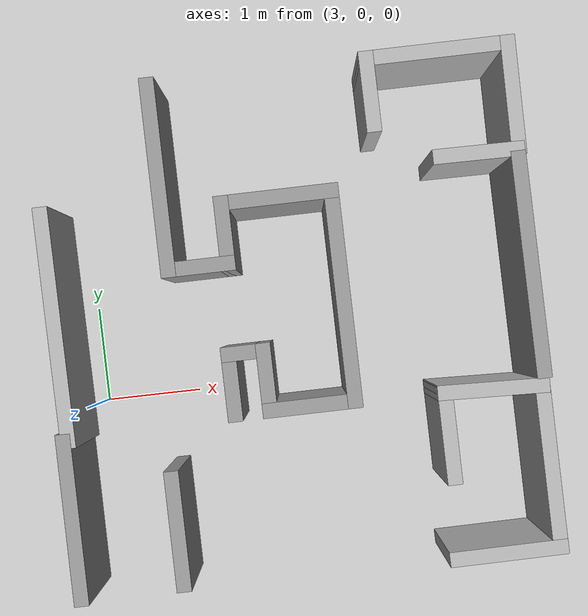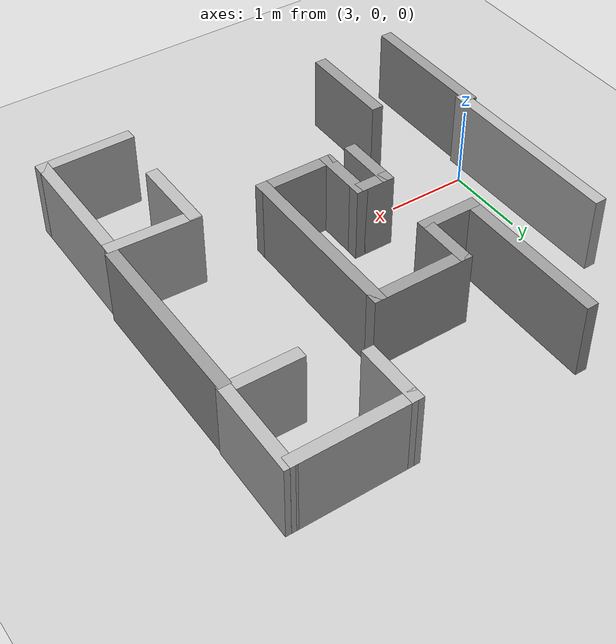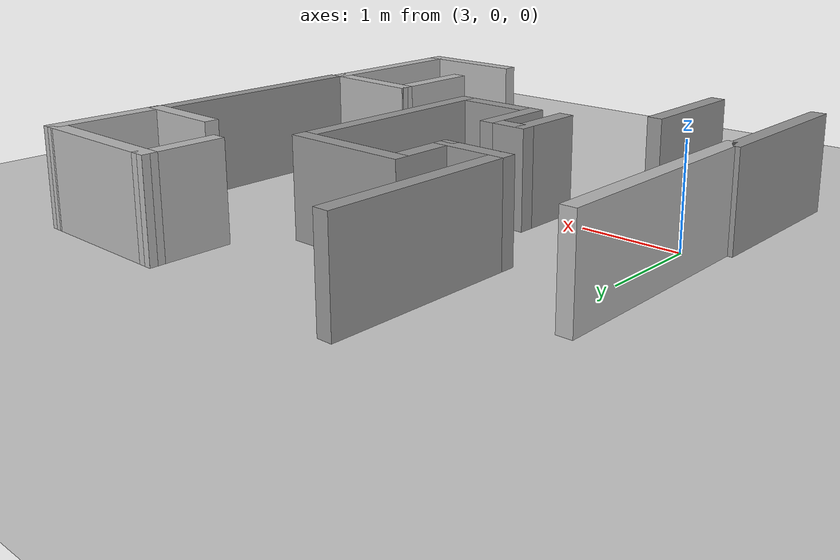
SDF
<sdf version="1.7">
 <world name="default">
  <model name="ground_plane">
   <static>1</static>
   <link name="link">
    <collision name="collision">
     <geometry><plane><normal>0 0 1</normal><size>100 100</size></plane></geometry>
     <surface><friction><ode><mu>100</mu><mu2>50</mu2></ode></friction></surface>
    </collision>
    <visual name="visual">
     <cast_shadows>0</cast_shadows>
     <geometry><plane><normal>0 0 1</normal><size>100 100</size></plane></geometry>
     <material>
      <script><uri>file://media/materials/scripts/gazebo.material</uri><name>Gazebo/Grey</name></script>
     </material>
    </visual>
   </link>
  </model>
  <model name="final_maze_v2">
   <link name="Wall_29">
    <pose>0.877343 -1.70359 0 0 0 -1.5708</pose>
    <inertial>
     <inertia><ixx>0</ixx><ixy>0</ixy><ixz>0</ixz><iyy>0</iyy><iyz>0</iyz><izz>0</izz></inertia>
     <mass>0</mass>
    </inertial>
    <visual name="Wall_29_Visual">
     <pose>0 0 0.5 0 -0 0</pose>
     <geometry><box><size>1.71998 0.15 1</size></box></geometry>
     <material>
      <script><uri>file://media/materials/scripts/gazebo.material</uri><name>Gazebo/Grey</name></script>
      <ambient>1 1 1 1</ambient>
      <shader type="pixel"/>
     </material>
     <meta><layer>0</layer></meta>
    </visual>
    <collision name="Wall_29_Collision">
     <pose>0 0 0.5 0 -0 0</pose>
     <geometry><box><size>1.71998 0.15 1</size></box></geometry>
     <surface>
      <friction>
       <ode><mu>1</mu><mu2>1</mu2><fdir1>0 0 0</fdir1><slip1>0</slip1><slip2>0</slip2></ode>
       <torsional>
        <coefficient>1</coefficient>
        <patch_radius>0</patch_radius>
        <surface_radius>0</surface_radius>
        <use_patch_radius>1</use_patch_radius>
        <ode><slip>0</slip></ode>
       </torsional>
      </friction>
      <bounce><restitution_coefficient>0</restitution_coefficient><threshold>1e+06</threshold></bounce>
      <contact>
       <collide_without_contact>0</collide_without_contact>
       <collide_without_contact_bitmask>1</collide_without_contact_bitmask>
       <collide_bitmask>1</collide_bitmask>
       <ode>
        <soft_cfm>0</soft_cfm>
        <soft_erp>0.2</soft_erp>
        <kp>1e+13</kp>
        <kd>1</kd>
        <max_vel>0.01</max_vel>
        <min_depth>0</min_depth>
       </ode>
       <bullet>
        <split_impulse>1</split_impulse>
        <split_impulse_penetration_threshold>-0.01</split_impulse_penetration_threshold>
        <soft_cfm>0</soft_cfm>
        <soft_erp>0.2</soft_erp>
        <kp>1e+13</kp>
        <kd>1</kd>
       </bullet>
      </contact>
     </surface>
    </collision>
   </link>
   <link name="Wall_29_clone">
    <pose>1.90614 -1.93473 0 0 0 -1.5708</pose>
    <inertial>
     <inertia><ixx>0</ixx><ixy>0</ixy><ixz>0</ixz><iyy>0</iyy><iyz>0</iyz><izz>0</izz></inertia>
     <mass>0</mass>
    </inertial>
    <visual name="Wall_29_Visual">
     <pose>0 0 0.5 0 -0 0</pose>
     <geometry><box><size>1.20691 0.15 1</size></box></geometry>
     <material>
      <script><uri>file://media/materials/scripts/gazebo.material</uri><name>Gazebo/Grey</name></script>
      <ambient>1 1 1 1</ambient>
      <shader type="pixel"/>
     </material>
     <meta><layer>0</layer></meta>
    </visual>
    <collision name="Wall_29_Collision">
     <pose>0 0 0.5 0 -0 0</pose>
     <geometry><box><size>1.20691 0.15 1</size></box></geometry>
     <surface>
      <friction>
       <ode><mu>1</mu><mu2>1</mu2><fdir1>0 0 0</fdir1><slip1>0</slip1><slip2>0</slip2></ode>
       <torsional>
        <coefficient>1</coefficient>
        <patch_radius>0</patch_radius>
        <surface_radius>0</surface_radius>
        <use_patch_radius>1</use_patch_radius>
        <ode><slip>0</slip></ode>
       </torsional>
      </friction>
      <bounce><restitution_coefficient>0</restitution_coefficient><threshold>1e+06</threshold></bounce>
      <contact>
       <collide_without_contact>0</collide_without_contact>
       <collide_without_contact_bitmask>1</collide_without_contact_bitmask>
       <collide_bitmask>1</collide_bitmask>
       <ode>
        <soft_cfm>0</soft_cfm>
        <soft_erp>0.2</soft_erp>
        <kp>1e+13</kp>
        <kd>1</kd>
        <max_vel>0.01</max_vel>
        <min_depth>0</min_depth>
       </ode>
       <bullet>
        <split_impulse>1</split_impulse>
        <split_impulse_penetration_threshold>-0.01</split_impulse_penetration_threshold>
        <soft_cfm>0</soft_cfm>
        <soft_erp>0.2</soft_erp>
        <kp>1e+13</kp>
        <kd>1</kd>
       </bullet>
      </contact>
     </surface>
    </collision>
   </link>
   <link name="Wall_39">
    <pose>2.10527 1.58161 0 0 0 -1.5708</pose>
    <visual name="Wall_39_Visual_0">
     <pose>0 0 0.5 0 -0 0</pose>
     <geometry><box><size>2 0.15 1</size></box></geometry>
     <material>
      <script><uri>file://media/materials/scripts/gazebo.material</uri><name>Gazebo/Grey</name></script>
      <ambient>1 1 1 1</ambient>
      <shader type="pixel"/>
     </material>
     <meta><layer>0</layer></meta>
    </visual>
    <collision name="Wall_39_Collision_0">
     <pose>0 0 0.5 0 -0 0</pose>
     <geometry><box><size>2 0.15 1</size></box></geometry>
     <surface>
      <friction>
       <ode><mu>1</mu><mu2>1</mu2><fdir1>0 0 0</fdir1><slip1>0</slip1><slip2>0</slip2></ode>
       <torsional>
        <coefficient>1</coefficient>
        <patch_radius>0</patch_radius>
        <surface_radius>0</surface_radius>
        <use_patch_radius>1</use_patch_radius>
        <ode><slip>0</slip></ode>
       </torsional>
      </friction>
      <bounce><restitution_coefficient>0</restitution_coefficient><threshold>1e+06</threshold></bounce>
      <contact>
       <collide_without_contact>0</collide_without_contact>
       <collide_without_contact_bitmask>1</collide_without_contact_bitmask>
       <collide_bitmask>1</collide_bitmask>
       <ode>
        <soft_cfm>0</soft_cfm>
        <soft_erp>0.2</soft_erp>
        <kp>1e+13</kp>
        <kd>1</kd>
        <max_vel>0.01</max_vel>
        <min_depth>0</min_depth>
       </ode>
       <bullet>
        <split_impulse>1</split_impulse>
        <split_impulse_penetration_threshold>-0.01</split_impulse_penetration_threshold>
        <soft_cfm>0</soft_cfm>
        <soft_erp>0.2</soft_erp>
        <kp>1e+13</kp>
        <kd>1</kd>
       </bullet>
      </contact>
     </surface>
    </collision>
   </link>
   <link name="Wall_40">
    <pose>2.40526 0.656606 0 0 -0 0</pose>
    <inertial>
     <mass>1</mass>
     <inertia><ixx>1</ixx><ixy>0</ixy><ixz>0</ixz><iyy>1</iyy><iyz>0</iyz><izz>1</izz></inertia>
    </inertial>
    <visual name="Wall_40_Visual">
     <pose>0 0 0.5 0 -0 0</pose>
     <geometry><box><size>0.75 0.15 1</size></box></geometry>
     <material>
      <script><uri>file://media/materials/scripts/gazebo.material</uri><name>Gazebo/Grey</name></script>
      <ambient>1 1 1 1</ambient>
      <shader type="pixel"><normal_map>__default__</normal_map></shader>
      <diffuse>0.7 0.7 0.7 1</diffuse>
      <specular>0.01 0.01 0.01 1</specular>
      <emissive>0 0 0 1</emissive>
     </material>
     <meta><layer>0</layer></meta>
    </visual>
    <collision name="Wall_40_Collision">
     <pose>0 0 0.5 0 -0 0</pose>
     <geometry><box><size>0.75 0.15 1</size></box></geometry>
     <surface>
      <friction>
       <ode><mu>1</mu><mu2>1</mu2><fdir1>0 0 0</fdir1><slip1>0</slip1><slip2>0</slip2></ode>
       <torsional>
        <coefficient>1</coefficient>
        <patch_radius>0</patch_radius>
        <surface_radius>0</surface_radius>
        <use_patch_radius>1</use_patch_radius>
        <ode><slip>0</slip></ode>
       </torsional>
      </friction>
      <bounce><restitution_coefficient>0</restitution_coefficient><threshold>1e+06</threshold></bounce>
      <contact>
       <collide_without_contact>0</collide_without_contact>
       <collide_without_contact_bitmask>1</collide_without_contact_bitmask>
       <collide_bitmask>1</collide_bitmask>
       <ode>
        <soft_cfm>0</soft_cfm>
        <soft_erp>0.2</soft_erp>
        <kp>1e+13</kp>
        <kd>1</kd>
        <max_vel>0.01</max_vel>
        <min_depth>0</min_depth>
       </ode>
       <bullet>
        <split_impulse>1</split_impulse>
        <split_impulse_penetration_threshold>-0.01</split_impulse_penetration_threshold>
        <soft_cfm>0</soft_cfm>
        <soft_erp>0.2</soft_erp>
        <kp>1e+13</kp>
        <kd>1</kd>
       </bullet>
      </contact>
     </surface>
    </collision>
   </link>
   <link name="Wall_41">
    <pose>2.70526 0.956606 0 0 -0 1.5708</pose>
    <inertial>
     <mass>1</mass>
     <inertia><ixx>1</ixx><ixy>0</ixy><ixz>0</ixz><iyy>1</iyy><iyz>0</iyz><izz>1</izz></inertia>
    </inertial>
    <visual name="Wall_41_Visual">
     <pose>0 0 0.5 0 -0 0</pose>
     <geometry><box><size>0.75 0.15 1</size></box></geometry>
     <material>
      <script><uri>file://media/materials/scripts/gazebo.material</uri><name>Gazebo/Grey</name></script>
      <ambient>1 1 1 1</ambient>
      <shader type="pixel"><normal_map>__default__</normal_map></shader>
      <diffuse>0.7 0.7 0.7 1</diffuse>
      <specular>0.01 0.01 0.01 1</specular>
      <emissive>0 0 0 1</emissive>
     </material>
     <meta><layer>0</layer></meta>
    </visual>
    <collision name="Wall_41_Collision">
     <pose>0 0 0.5 0 -0 0</pose>
     <geometry><box><size>0.75 0.15 1</size></box></geometry>
     <surface>
      <friction>
       <ode><mu>1</mu><mu2>1</mu2><fdir1>0 0 0</fdir1><slip1>0</slip1><slip2>0</slip2></ode>
       <torsional>
        <coefficient>1</coefficient>
        <patch_radius>0</patch_radius>
        <surface_radius>0</surface_radius>
        <use_patch_radius>1</use_patch_radius>
        <ode><slip>0</slip></ode>
       </torsional>
      </friction>
      <bounce><restitution_coefficient>0</restitution_coefficient><threshold>1e+06</threshold></bounce>
      <contact>
       <collide_without_contact>0</collide_without_contact>
       <collide_without_contact_bitmask>1</collide_without_contact_bitmask>
       <collide_bitmask>1</collide_bitmask>
       <ode>
        <soft_cfm>0</soft_cfm>
        <soft_erp>0.2</soft_erp>
        <kp>1e+13</kp>
        <kd>1</kd>
        <max_vel>0.01</max_vel>
        <min_depth>0</min_depth>
       </ode>
       <bullet>
        <split_impulse>1</split_impulse>
        <split_impulse_penetration_threshold>-0.01</split_impulse_penetration_threshold>
        <soft_cfm>0</soft_cfm>
        <soft_erp>0.2</soft_erp>
        <kp>1e+13</kp>
        <kd>1</kd>
       </bullet>
      </contact>
     </surface>
    </collision>
   </link>
   <link name="Wall_42">
    <pose>3.25527 1.25661 0 0 -0 0</pose>
    <inertial>
     <mass>1</mass>
     <inertia><ixx>1</ixx><ixy>0</ixy><ixz>0</ixz><iyy>1</iyy><iyz>0</iyz><izz>1</izz></inertia>
    </inertial>
    <visual name="Wall_42_Visual">
     <pose>0 0 0.5 0 -0 0</pose>
     <geometry><box><size>1.25 0.15 1</size></box></geometry>
     <material>
      <script><uri>file://media/materials/scripts/gazebo.material</uri><name>Gazebo/Grey</name></script>
      <ambient>1 1 1 1</ambient>
      <shader type="pixel"><normal_map>__default__</normal_map></shader>
      <diffuse>0.7 0.7 0.7 1</diffuse>
      <specular>0.01 0.01 0.01 1</specular>
      <emissive>0 0 0 1</emissive>
     </material>
     <meta><layer>0</layer></meta>
    </visual>
    <collision name="Wall_42_Collision">
     <pose>0 0 0.5 0 -0 0</pose>
     <geometry><box><size>1.25 0.15 1</size></box></geometry>
     <surface>
      <friction>
       <ode><mu>1</mu><mu2>1</mu2><fdir1>0 0 0</fdir1><slip1>0</slip1><slip2>0</slip2></ode>
       <torsional>
        <coefficient>1</coefficient>
        <patch_radius>0</patch_radius>
        <surface_radius>0</surface_radius>
        <use_patch_radius>1</use_patch_radius>
        <ode><slip>0</slip></ode>
       </torsional>
      </friction>
      <bounce><restitution_coefficient>0</restitution_coefficient><threshold>1e+06</threshold></bounce>
      <contact>
       <collide_without_contact>0</collide_without_contact>
       <collide_without_contact_bitmask>1</collide_without_contact_bitmask>
       <collide_bitmask>1</collide_bitmask>
       <ode>
        <soft_cfm>0</soft_cfm>
        <soft_erp>0.2</soft_erp>
        <kp>1e+13</kp>
        <kd>1</kd>
        <max_vel>0.01</max_vel>
        <min_depth>0</min_depth>
       </ode>
       <bullet>
        <split_impulse>1</split_impulse>
        <split_impulse_penetration_threshold>-0.01</split_impulse_penetration_threshold>
        <soft_cfm>0</soft_cfm>
        <soft_erp>0.2</soft_erp>
        <kp>1e+13</kp>
        <kd>1</kd>
       </bullet>
      </contact>
     </surface>
    </collision>
   </link>
   <link name="Wall_43">
    <pose>3.80526 0.206606 0 0 0 -1.5708</pose>
    <inertial>
     <mass>1</mass>
     <inertia><ixx>1</ixx><ixy>0</ixy><ixz>0</ixz><iyy>1</iyy><iyz>0</iyz><izz>1</izz></inertia>
    </inertial>
    <visual name="Wall_43_Visual">
     <pose>0 0 0.5 0 -0 0</pose>
     <geometry><box><size>2.25 0.15 1</size></box></geometry>
     <material>
      <script><uri>file://media/materials/scripts/gazebo.material</uri><name>Gazebo/Grey</name></script>
      <ambient>1 1 1 1</ambient>
      <shader type="pixel"><normal_map>__default__</normal_map></shader>
      <diffuse>0.7 0.7 0.7 1</diffuse>
      <specular>0.01 0.01 0.01 1</specular>
      <emissive>0 0 0 1</emissive>
     </material>
     <meta><layer>0</layer></meta>
    </visual>
    <collision name="Wall_43_Collision">
     <pose>0 0 0.5 0 -0 0</pose>
     <geometry><box><size>2.25 0.15 1</size></box></geometry>
     <surface>
      <friction>
       <ode><mu>1</mu><mu2>1</mu2><fdir1>0 0 0</fdir1><slip1>0</slip1><slip2>0</slip2></ode>
       <torsional>
        <coefficient>1</coefficient>
        <patch_radius>0</patch_radius>
        <surface_radius>0</surface_radius>
        <use_patch_radius>1</use_patch_radius>
        <ode><slip>0</slip></ode>
       </torsional>
      </friction>
      <bounce><restitution_coefficient>0</restitution_coefficient><threshold>1e+06</threshold></bounce>
      <contact>
       <collide_without_contact>0</collide_without_contact>
       <collide_without_contact_bitmask>1</collide_without_contact_bitmask>
       <collide_bitmask>1</collide_bitmask>
       <ode>
        <soft_cfm>0</soft_cfm>
        <soft_erp>0.2</soft_erp>
        <kp>1e+13</kp>
        <kd>1</kd>
        <max_vel>0.01</max_vel>
        <min_depth>0</min_depth>
       </ode>
       <bullet>
        <split_impulse>1</split_impulse>
        <split_impulse_penetration_threshold>-0.01</split_impulse_penetration_threshold>
        <soft_cfm>0</soft_cfm>
        <soft_erp>0.2</soft_erp>
        <kp>1e+13</kp>
        <kd>1</kd>
       </bullet>
      </contact>
     </surface>
    </collision>
   </link>
   <link name="Wall_44">
    <pose>3.38027 -0.843394 0 0 -0 3.14159</pose>
    <inertial>
     <mass>1</mass>
     <inertia><ixx>1</ixx><ixy>0</ixy><ixz>0</ixz><iyy>1</iyy><iyz>0</iyz><izz>1</izz></inertia>
    </inertial>
    <visual name="Wall_44_Visual">
     <pose>0 0 0.5 0 -0 0</pose>
     <geometry><box><size>1 0.15 1</size></box></geometry>
     <material>
      <script><uri>file://media/materials/scripts/gazebo.material</uri><name>Gazebo/Grey</name></script>
      <ambient>1 1 1 1</ambient>
      <shader type="pixel"><normal_map>__default__</normal_map></shader>
      <diffuse>0.7 0.7 0.7 1</diffuse>
      <specular>0.01 0.01 0.01 1</specular>
      <emissive>0 0 0 1</emissive>
     </material>
     <meta><layer>0</layer></meta>
    </visual>
    <collision name="Wall_44_Collision">
     <pose>0 0 0.5 0 -0 0</pose>
     <geometry><box><size>1 0.15 1</size></box></geometry>
     <surface>
      <friction>
       <ode><mu>1</mu><mu2>1</mu2><fdir1>0 0 0</fdir1><slip1>0</slip1><slip2>0</slip2></ode>
       <torsional>
        <coefficient>1</coefficient>
        <patch_radius>0</patch_radius>
        <surface_radius>0</surface_radius>
        <use_patch_radius>1</use_patch_radius>
        <ode><slip>0</slip></ode>
       </torsional>
      </friction>
      <bounce><restitution_coefficient>0</restitution_coefficient><threshold>1e+06</threshold></bounce>
      <contact>
       <collide_without_contact>0</collide_without_contact>
       <collide_without_contact_bitmask>1</collide_without_contact_bitmask>
       <collide_bitmask>1</collide_bitmask>
       <ode>
        <soft_cfm>0</soft_cfm>
        <soft_erp>0.2</soft_erp>
        <kp>1e+13</kp>
        <kd>1</kd>
        <max_vel>0.01</max_vel>
        <min_depth>0</min_depth>
       </ode>
       <bullet>
        <split_impulse>1</split_impulse>
        <split_impulse_penetration_threshold>-0.01</split_impulse_penetration_threshold>
        <soft_cfm>0</soft_cfm>
        <soft_erp>0.2</soft_erp>
        <kp>1e+13</kp>
        <kd>1</kd>
       </bullet>
      </contact>
     </surface>
    </collision>
   </link>
   <link name="Wall_45">
    <pose>2.95526 -0.543394 0 0 -0 1.5708</pose>
    <inertial>
     <mass>1</mass>
     <inertia><ixx>1</ixx><ixy>0</ixy><ixz>0</ixz><iyy>1</iyy><iyz>0</iyz><izz>1</izz></inertia>
    </inertial>
    <visual name="Wall_45_Visual">
     <pose>0 0 0.5 0 -0 0</pose>
     <geometry><box><size>0.75 0.15 1</size></box></geometry>
     <material>
      <script><uri>file://media/materials/scripts/gazebo.material</uri><name>Gazebo/Grey</name></script>
      <ambient>1 1 1 1</ambient>
      <shader type="pixel"><normal_map>__default__</normal_map></shader>
      <diffuse>0.7 0.7 0.7 1</diffuse>
      <specular>0.01 0.01 0.01 1</specular>
      <emissive>0 0 0 1</emissive>
     </material>
     <meta><layer>0</layer></meta>
    </visual>
    <collision name="Wall_45_Collision">
     <pose>0 0 0.5 0 -0 0</pose>
     <geometry><box><size>0.75 0.15 1</size></box></geometry>
     <surface>
      <friction>
       <ode><mu>1</mu><mu2>1</mu2><fdir1>0 0 0</fdir1><slip1>0</slip1><slip2>0</slip2></ode>
       <torsional>
        <coefficient>1</coefficient>
        <patch_radius>0</patch_radius>
        <surface_radius>0</surface_radius>
        <use_patch_radius>1</use_patch_radius>
        <ode><slip>0</slip></ode>
       </torsional>
      </friction>
      <bounce><restitution_coefficient>0</restitution_coefficient><threshold>1e+06</threshold></bounce>
      <contact>
       <collide_without_contact>0</collide_without_contact>
       <collide_without_contact_bitmask>1</collide_without_contact_bitmask>
       <collide_bitmask>1</collide_bitmask>
       <ode>
        <soft_cfm>0</soft_cfm>
        <soft_erp>0.2</soft_erp>
        <kp>1e+13</kp>
        <kd>1</kd>
        <max_vel>0.01</max_vel>
        <min_depth>0</min_depth>
       </ode>
       <bullet>
        <split_impulse>1</split_impulse>
        <split_impulse_penetration_threshold>-0.01</split_impulse_penetration_threshold>
        <soft_cfm>0</soft_cfm>
        <soft_erp>0.2</soft_erp>
        <kp>1e+13</kp>
        <kd>1</kd>
       </bullet>
      </contact>
     </surface>
    </collision>
   </link>
   <link name="Wall_46">
    <pose>2.78026 -0.243394 0 0 -0 3.14159</pose>
    <inertial>
     <mass>1</mass>
     <inertia><ixx>1</ixx><ixy>0</ixy><ixz>0</ixz><iyy>1</iyy><iyz>0</iyz><izz>1</izz></inertia>
    </inertial>
    <visual name="Wall_46_Visual">
     <pose>0 0 0.5 0 -0 0</pose>
     <geometry><box><size>0.5 0.15 1</size></box></geometry>
     <material>
      <script><uri>file://media/materials/scripts/gazebo.material</uri><name>Gazebo/Grey</name></script>
      <ambient>1 1 1 1</ambient>
      <shader type="pixel"><normal_map>__default__</normal_map></shader>
      <diffuse>0.7 0.7 0.7 1</diffuse>
      <specular>0.01 0.01 0.01 1</specular>
      <emissive>0 0 0 1</emissive>
     </material>
     <meta><layer>0</layer></meta>
    </visual>
    <collision name="Wall_46_Collision">
     <pose>0 0 0.5 0 -0 0</pose>
     <geometry><box><size>0.5 0.15 1</size></box></geometry>
     <surface>
      <friction>
       <ode><mu>1</mu><mu2>1</mu2><fdir1>0 0 0</fdir1><slip1>0</slip1><slip2>0</slip2></ode>
       <torsional>
        <coefficient>1</coefficient>
        <patch_radius>0</patch_radius>
        <surface_radius>0</surface_radius>
        <use_patch_radius>1</use_patch_radius>
        <ode><slip>0</slip></ode>
       </torsional>
      </friction>
      <bounce><restitution_coefficient>0</restitution_coefficient><threshold>1e+06</threshold></bounce>
      <contact>
       <collide_without_contact>0</collide_without_contact>
       <collide_without_contact_bitmask>1</collide_without_contact_bitmask>
       <collide_bitmask>1</collide_bitmask>
       <ode>
        <soft_cfm>0</soft_cfm>
        <soft_erp>0.2</soft_erp>
        <kp>1e+13</kp>
        <kd>1</kd>
        <max_vel>0.01</max_vel>
        <min_depth>0</min_depth>
       </ode>
       <bullet>
        <split_impulse>1</split_impulse>
        <split_impulse_penetration_threshold>-0.01</split_impulse_penetration_threshold>
        <soft_cfm>0</soft_cfm>
        <soft_erp>0.2</soft_erp>
        <kp>1e+13</kp>
        <kd>1</kd>
       </bullet>
      </contact>
     </surface>
    </collision>
   </link>
   <link name="Wall_47">
    <pose>2.60527 -0.543394 0 0 0 -1.5708</pose>
    <inertial>
     <mass>1</mass>
     <inertia><ixx>1</ixx><ixy>0</ixy><ixz>0</ixz><iyy>1</iyy><iyz>0</iyz><izz>1</izz></inertia>
    </inertial>
    <visual name="Wall_47_Visual">
     <pose>0 0 0.5 0 -0 0</pose>
     <geometry><box><size>0.75 0.15 1</size></box></geometry>
     <material>
      <script><uri>file://media/materials/scripts/gazebo.material</uri><name>Gazebo/Grey</name></script>
      <ambient>1 1 1 1</ambient>
      <shader type="pixel"><normal_map>__default__</normal_map></shader>
      <diffuse>0.7 0.7 0.7 1</diffuse>
      <specular>0.01 0.01 0.01 1</specular>
      <emissive>0 0 0 1</emissive>
     </material>
     <meta><layer>0</layer></meta>
    </visual>
    <collision name="Wall_47_Collision">
     <pose>0 0 0.5 0 -0 0</pose>
     <geometry><box><size>0.75 0.15 1</size></box></geometry>
     <surface>
      <friction>
       <ode><mu>1</mu><mu2>1</mu2><fdir1>0 0 0</fdir1><slip1>0</slip1><slip2>0</slip2></ode>
       <torsional>
        <coefficient>1</coefficient>
        <patch_radius>0</patch_radius>
        <surface_radius>0</surface_radius>
        <use_patch_radius>1</use_patch_radius>
        <ode><slip>0</slip></ode>
       </torsional>
      </friction>
      <bounce><restitution_coefficient>0</restitution_coefficient><threshold>1e+06</threshold></bounce>
      <contact>
       <collide_without_contact>0</collide_without_contact>
       <collide_without_contact_bitmask>1</collide_without_contact_bitmask>
       <collide_bitmask>1</collide_bitmask>
       <ode>
        <soft_cfm>0</soft_cfm>
        <soft_erp>0.2</soft_erp>
        <kp>1e+13</kp>
        <kd>1</kd>
        <max_vel>0.01</max_vel>
        <min_depth>0</min_depth>
       </ode>
       <bullet>
        <split_impulse>1</split_impulse>
        <split_impulse_penetration_threshold>-0.01</split_impulse_penetration_threshold>
        <soft_cfm>0</soft_cfm>
        <soft_erp>0.2</soft_erp>
        <kp>1e+13</kp>
        <kd>1</kd>
       </bullet>
      </contact>
     </surface>
    </collision>
   </link>
   <link name="Wall_5">
    <pose>5.69877 0.301308 0 0 -0 1.57478</pose>
    <inertial>
     <inertia><ixx>0</ixx><ixy>0</ixy><ixz>0</ixz><iyy>0</iyy><iyz>0</iyz><izz>0</izz></inertia>
     <mass>0</mass>
    </inertial>
    <visual name="Wall_5_Visual">
     <pose>0 0 0.5 0 -0 0</pose>
     <geometry><box><size>2.27649 0.15 1</size></box></geometry>
     <material>
      <script><uri>file://media/materials/scripts/gazebo.material</uri><name>Gazebo/Grey</name></script>
      <ambient>1 1 1 1</ambient>
      <shader type="pixel"/>
     </material>
     <meta><layer>0</layer></meta>
    </visual>
    <collision name="Wall_5_Collision">
     <pose>0 0 0.5 0 -0 0</pose>
     <geometry><box><size>2.27649 0.15 1</size></box></geometry>
     <surface>
      <friction>
       <ode><mu>1</mu><mu2>1</mu2><fdir1>0 0 0</fdir1><slip1>0</slip1><slip2>0</slip2></ode>
       <torsional>
        <coefficient>1</coefficient>
        <patch_radius>0</patch_radius>
        <surface_radius>0</surface_radius>
        <use_patch_radius>1</use_patch_radius>
        <ode><slip>0</slip></ode>
       </torsional>
      </friction>
      <bounce><restitution_coefficient>0</restitution_coefficient><threshold>1e+06</threshold></bounce>
      <contact>
       <collide_without_contact>0</collide_without_contact>
       <collide_without_contact_bitmask>1</collide_without_contact_bitmask>
       <collide_bitmask>1</collide_bitmask>
       <ode>
        <soft_cfm>0</soft_cfm>
        <soft_erp>0.2</soft_erp>
        <kp>1e+13</kp>
        <kd>1</kd>
        <max_vel>0.01</max_vel>
        <min_depth>0</min_depth>
       </ode>
       <bullet>
        <split_impulse>1</split_impulse>
        <split_impulse_penetration_threshold>-0.01</split_impulse_penetration_threshold>
        <soft_cfm>0</soft_cfm>
        <soft_erp>0.2</soft_erp>
        <kp>1e+13</kp>
        <kd>1</kd>
       </bullet>
      </contact>
     </surface>
    </collision>
   </link>
   <link name="Wall_51">
    <pose>5.30682 1.46374 0 0 -0 3.12962</pose>
    <inertial>
     <inertia><ixx>0</ixx><ixy>0</ixy><ixz>0</ixz><iyy>0</iyy><iyz>0</iyz><izz>0</izz></inertia>
     <mass>0</mass>
    </inertial>
    <visual name="Wall_51_Visual">
     <pose>0 0 0.5 0 -0 0</pose>
     <geometry><box><size>0.919672 0.15 1</size></box></geometry>
     <meta><layer>0</layer></meta>
     <material><shader type="pixel"/></material>
    </visual>
    <collision name="Wall_51_Collision">
     <pose>0 0 0.5 0 -0 0</pose>
     <geometry><box><size>0.919672 0.15 1</size></box></geometry>
     <surface>
      <friction>
       <ode><mu>1</mu><mu2>1</mu2><fdir1>0 0 0</fdir1><slip1>0</slip1><slip2>0</slip2></ode>
       <torsional>
        <coefficient>1</coefficient>
        <patch_radius>0</patch_radius>
        <surface_radius>0</surface_radius>
        <use_patch_radius>1</use_patch_radius>
        <ode><slip>0</slip></ode>
       </torsional>
      </friction>
      <bounce><restitution_coefficient>0</restitution_coefficient><threshold>1e+06</threshold></bounce>
      <contact>
       <collide_without_contact>0</collide_without_contact>
       <collide_without_contact_bitmask>1</collide_without_contact_bitmask>
       <collide_bitmask>1</collide_bitmask>
       <ode>
        <soft_cfm>0</soft_cfm>
        <soft_erp>0.2</soft_erp>
        <kp>1e+13</kp>
        <kd>1</kd>
        <max_vel>0.01</max_vel>
        <min_depth>0</min_depth>
       </ode>
       <bullet>
        <split_impulse>1</split_impulse>
        <split_impulse_penetration_threshold>-0.01</split_impulse_penetration_threshold>
        <soft_cfm>0</soft_cfm>
        <soft_erp>0.2</soft_erp>
        <kp>1e+13</kp>
        <kd>1</kd>
       </bullet>
      </contact>
     </surface>
    </collision>
   </link>
   <link name="Wall_53">
    <pose>5.18576 -0.885394 0 0 -0 3.10446</pose>
    <visual name="Wall_53_Visual">
     <pose>0 0 0.5 0 -0 0</pose>
     <geometry><box><size>1.11967 0.15 1</size></box></geometry>
     <meta><layer>0</layer></meta>
     <material><shader type="pixel"/></material>
    </visual>
    <collision name="Wall_53_Collision">
     <pose>0 0 0.5 0 -0 0</pose>
     <geometry><box><size>1.11967 0.15 1</size></box></geometry>
     <surface>
      <friction>
       <ode><mu>1</mu><mu2>1</mu2><fdir1>0 0 0</fdir1><slip1>0</slip1><slip2>0</slip2></ode>
       <torsional>
        <coefficient>1</coefficient>
        <patch_radius>0</patch_radius>
        <surface_radius>0</surface_radius>
        <use_patch_radius>1</use_patch_radius>
        <ode><slip>0</slip></ode>
       </torsional>
      </friction>
      <bounce><restitution_coefficient>0</restitution_coefficient><threshold>1e+06</threshold></bounce>
      <contact>
       <collide_without_contact>0</collide_without_contact>
       <collide_without_contact_bitmask>1</collide_without_contact_bitmask>
       <collide_bitmask>1</collide_bitmask>
       <ode>
        <soft_cfm>0</soft_cfm>
        <soft_erp>0.2</soft_erp>
        <kp>1e+13</kp>
        <kd>1</kd>
        <max_vel>0.01</max_vel>
        <min_depth>0</min_depth>
       </ode>
       <bullet>
        <split_impulse>1</split_impulse>
        <split_impulse_penetration_threshold>-0.01</split_impulse_penetration_threshold>
        <soft_cfm>0</soft_cfm>
        <soft_erp>0.2</soft_erp>
        <kp>1e+13</kp>
        <kd>1</kd>
       </bullet>
      </contact>
     </surface>
    </collision>
   </link>
   <link name="Wall_53_clone">
    <pose>5.15405 -2.52119 0 0 0 -3.13583</pose>
    <inertial>
     <inertia><ixx>0</ixx><ixy>0</ixy><ixz>0</ixz><iyy>0</iyy><iyz>0</iyz><izz>0</izz></inertia>
     <mass>0</mass>
    </inertial>
    <visual name="Wall_53_Visual">
     <pose>0 0 0.5 0 -0 0</pose>
     <geometry><box><size>1.18538 0.15 1</size></box></geometry>
     <meta><layer>0</layer></meta>
     <material><shader type="pixel"/></material>
    </visual>
    <collision name="Wall_53_Collision">
     <pose>0 0 0.5 0 -0 0</pose>
     <geometry><box><size>1.18538 0.15 1</size></box></geometry>
     <surface>
      <friction>
       <ode><mu>1</mu><mu2>1</mu2><fdir1>0 0 0</fdir1><slip1>0</slip1><slip2>0</slip2></ode>
       <torsional>
        <coefficient>1</coefficient>
        <patch_radius>0</patch_radius>
        <surface_radius>0</surface_radius>
        <use_patch_radius>1</use_patch_radius>
        <ode><slip>0</slip></ode>
       </torsional>
      </friction>
      <bounce><restitution_coefficient>0</restitution_coefficient><threshold>1e+06</threshold></bounce>
      <contact>
       <collide_without_contact>0</collide_without_contact>
       <collide_without_contact_bitmask>1</collide_without_contact_bitmask>
       <collide_bitmask>1</collide_bitmask>
       <ode>
        <soft_cfm>0</soft_cfm>
        <soft_erp>0.2</soft_erp>
        <kp>1e+13</kp>
        <kd>1</kd>
        <max_vel>0.01</max_vel>
        <min_depth>0</min_depth>
       </ode>
       <bullet>
        <split_impulse>1</split_impulse>
        <split_impulse_penetration_threshold>-0.01</split_impulse_penetration_threshold>
        <soft_cfm>0</soft_cfm>
        <soft_erp>0.2</soft_erp>
        <kp>1e+13</kp>
        <kd>1</kd>
       </bullet>
      </contact>
     </surface>
    </collision>
   </link>
   <link name="Wall_54">
    <pose>4.7009 -1.29697 0 0 0 -1.5708</pose>
    <inertial>
     <inertia><ixx>0</ixx><ixy>0</ixy><ixz>0</ixz><iyy>0</iyy><iyz>0</iyz><izz>0</izz></inertia>
     <mass>0</mass>
    </inertial>
    <visual name="Wall_54_Visual">
     <pose>0 0 0.5 0 -0 0</pose>
     <geometry><box><size>0.982963 0.15 1</size></box></geometry>
     <meta><layer>0</layer></meta>
     <material><shader type="pixel"/></material>
    </visual>
    <collision name="Wall_54_Collision">
     <pose>0 0 0.5 0 -0 0</pose>
     <geometry><box><size>0.982963 0.15 1</size></box></geometry>
     <surface>
      <friction>
       <ode><mu>1</mu><mu2>1</mu2><fdir1>0 0 0</fdir1><slip1>0</slip1><slip2>0</slip2></ode>
       <torsional>
        <coefficient>1</coefficient>
        <patch_radius>0</patch_radius>
        <surface_radius>0</surface_radius>
        <use_patch_radius>1</use_patch_radius>
        <ode><slip>0</slip></ode>
       </torsional>
      </friction>
      <bounce><restitution_coefficient>0</restitution_coefficient><threshold>1e+06</threshold></bounce>
      <contact>
       <collide_without_contact>0</collide_without_contact>
       <collide_without_contact_bitmask>1</collide_without_contact_bitmask>
       <collide_bitmask>1</collide_bitmask>
       <ode>
        <soft_cfm>0</soft_cfm>
        <soft_erp>0.2</soft_erp>
        <kp>1e+13</kp>
        <kd>1</kd>
        <max_vel>0.01</max_vel>
        <min_depth>0</min_depth>
       </ode>
       <bullet>
        <split_impulse>1</split_impulse>
        <split_impulse_penetration_threshold>-0.01</split_impulse_penetration_threshold>
        <soft_cfm>0</soft_cfm>
        <soft_erp>0.2</soft_erp>
        <kp>1e+13</kp>
        <kd>1</kd>
       </bullet>
      </contact>
     </surface>
    </collision>
   </link>
   <link name="Wall_58">
    <pose>4.30126 2.18961 0 0 0 -1.56777</pose>
    <visual name="Wall_58_Visual">
     <pose>0 0 0.5 0 -0 0</pose>
     <geometry><box><size>0.810003 0.15 1</size></box></geometry>
     <meta><layer>0</layer></meta>
     <material><shader type="pixel"/></material>
    </visual>
    <collision name="Wall_58_Collision">
     <pose>0 0 0.5 0 -0 0</pose>
     <geometry><box><size>0.810003 0.15 1</size></box></geometry>
     <surface>
      <friction>
       <ode><mu>1</mu><mu2>1</mu2><fdir1>0 0 0</fdir1><slip1>0</slip1><slip2>0</slip2></ode>
       <torsional>
        <coefficient>1</coefficient>
        <patch_radius>0</patch_radius>
        <surface_radius>0</surface_radius>
        <use_patch_radius>1</use_patch_radius>
        <ode><slip>0</slip></ode>
       </torsional>
      </friction>
      <bounce><restitution_coefficient>0</restitution_coefficient><threshold>1e+06</threshold></bounce>
      <contact>
       <collide_without_contact>0</collide_without_contact>
       <collide_without_contact_bitmask>1</collide_without_contact_bitmask>
       <collide_bitmask>1</collide_bitmask>
       <ode>
        <soft_cfm>0</soft_cfm>
        <soft_erp>0.2</soft_erp>
        <kp>1e+13</kp>
        <kd>1</kd>
        <max_vel>0.01</max_vel>
        <min_depth>0</min_depth>
       </ode>
       <bullet>
        <split_impulse>1</split_impulse>
        <split_impulse_penetration_threshold>-0.01</split_impulse_penetration_threshold>
        <soft_cfm>0</soft_cfm>
        <soft_erp>0.2</soft_erp>
        <kp>1e+13</kp>
        <kd>1</kd>
       </bullet>
      </contact>
     </surface>
    </collision>
   </link>
   <link name="Wall_62">
    <pose>0.917765 0.215606 0 0 0 -1.56418</pose>
    <visual name="Wall_62_Visual">
     <pose>0 0 0.5 0 -0 0</pose>
     <geometry><box><size>2.41605 0.15 1</size></box></geometry>
     <meta><layer>0</layer></meta>
     <material><shader type="pixel"/></material>
    </visual>
    <collision name="Wall_62_Collision">
     <pose>0 0 0.5 0 -0 0</pose>
     <geometry><box><size>2.41605 0.15 1</size></box></geometry>
     <surface>
      <friction>
       <ode><mu>1</mu><mu2>1</mu2><fdir1>0 0 0</fdir1><slip1>0</slip1><slip2>0</slip2></ode>
       <torsional>
        <coefficient>1</coefficient>
        <patch_radius>0</patch_radius>
        <surface_radius>0</surface_radius>
        <use_patch_radius>1</use_patch_radius>
        <ode><slip>0</slip></ode>
       </torsional>
      </friction>
      <bounce><restitution_coefficient>0</restitution_coefficient><threshold>1e+06</threshold></bounce>
      <contact>
       <collide_without_contact>0</collide_without_contact>
       <collide_without_contact_bitmask>1</collide_without_contact_bitmask>
       <collide_bitmask>1</collide_bitmask>
       <ode>
        <soft_cfm>0</soft_cfm>
        <soft_erp>0.2</soft_erp>
        <kp>1e+13</kp>
        <kd>1</kd>
        <max_vel>0.01</max_vel>
        <min_depth>0</min_depth>
       </ode>
       <bullet>
        <split_impulse>1</split_impulse>
        <split_impulse_penetration_threshold>-0.01</split_impulse_penetration_threshold>
        <soft_cfm>0</soft_cfm>
        <soft_erp>0.2</soft_erp>
        <kp>1e+13</kp>
        <kd>1</kd>
       </bullet>
      </contact>
     </surface>
    </collision>
   </link>
   <link name="Wall_64">
    <pose>5.67026 -1.70339 0 0 0 -1.5708</pose>
    <visual name="Wall_64_Visual">
     <pose>0 0 0.5 0 -0 0</pose>
     <geometry><box><size>1.75 0.15 1</size></box></geometry>
     <meta><layer>0</layer></meta>
     <material><shader type="pixel"/></material>
    </visual>
    <collision name="Wall_64_Collision">
     <pose>0 0 0.5 0 -0 0</pose>
     <geometry><box><size>1.75 0.15 1</size></box></geometry>
     <surface>
      <friction>
       <ode><mu>1</mu><mu2>1</mu2><fdir1>0 0 0</fdir1><slip1>0</slip1><slip2>0</slip2></ode>
       <torsional>
        <coefficient>1</coefficient>
        <patch_radius>0</patch_radius>
        <surface_radius>0</surface_radius>
        <use_patch_radius>1</use_patch_radius>
        <ode><slip>0</slip></ode>
       </torsional>
      </friction>
      <bounce><restitution_coefficient>0</restitution_coefficient><threshold>1e+06</threshold></bounce>
      <contact>
       <collide_without_contact>0</collide_without_contact>
       <collide_without_contact_bitmask>1</collide_without_contact_bitmask>
       <collide_bitmask>1</collide_bitmask>
       <ode>
        <soft_cfm>0</soft_cfm>
        <soft_erp>0.2</soft_erp>
        <kp>1e+13</kp>
        <kd>1</kd>
        <max_vel>0.01</max_vel>
        <min_depth>0</min_depth>
       </ode>
       <bullet>
        <split_impulse>1</split_impulse>
        <split_impulse_penetration_threshold>-0.01</split_impulse_penetration_threshold>
        <soft_cfm>0</soft_cfm>
        <soft_erp>0.2</soft_erp>
        <kp>1e+13</kp>
        <kd>1</kd>
       </bullet>
      </contact>
     </surface>
    </collision>
   </link>
   <link name="Wall_68">
    <pose>5.71188 1.99804 0 0 0 -1.57943</pose>
    <visual name="Wall_68_Visual">
     <pose>0 0 0.5 0 -0 0</pose>
     <geometry><box><size>1.19233 0.15 1</size></box></geometry>
     <meta><layer>0</layer></meta>
     <material><shader type="pixel"/></material>
    </visual>
    <collision name="Wall_68_Collision">
     <pose>0 0 0.5 0 -0 0</pose>
     <geometry><box><size>1.19233 0.15 1</size></box></geometry>
     <surface>
      <friction>
       <ode><mu>1</mu><mu2>1</mu2><fdir1>0 0 0</fdir1><slip1>0</slip1><slip2>0</slip2></ode>
       <torsional>
        <coefficient>1</coefficient>
        <patch_radius>0</patch_radius>
        <surface_radius>0</surface_radius>
        <use_patch_radius>1</use_patch_radius>
        <ode><slip>0</slip></ode>
       </torsional>
      </friction>
      <bounce><restitution_coefficient>0</restitution_coefficient><threshold>1e+06</threshold></bounce>
      <contact>
       <collide_without_contact>0</collide_without_contact>
       <collide_without_contact_bitmask>1</collide_without_contact_bitmask>
       <collide_bitmask>1</collide_bitmask>
       <ode>
        <soft_cfm>0</soft_cfm>
        <soft_erp>0.2</soft_erp>
        <kp>1e+13</kp>
        <kd>1</kd>
        <max_vel>0.01</max_vel>
        <min_depth>0</min_depth>
       </ode>
       <bullet>
        <split_impulse>1</split_impulse>
        <split_impulse_penetration_threshold>-0.01</split_impulse_penetration_threshold>
        <soft_cfm>0</soft_cfm>
        <soft_erp>0.2</soft_erp>
        <kp>1e+13</kp>
        <kd>1</kd>
       </bullet>
      </contact>
     </surface>
    </collision>
   </link>
   <link name="Wall_70">
    <pose>4.97527 2.51961 0 0 -0 0</pose>
    <visual name="Wall_70_Visual">
     <pose>0 0 0.5 0 -0 0</pose>
     <geometry><box><size>1.5 0.15 1</size></box></geometry>
     <meta><layer>0</layer></meta>
     <material><shader type="pixel"/></material>
    </visual>
    <collision name="Wall_70_Collision">
     <pose>0 0 0.5 0 -0 0</pose>
     <geometry><box><size>1.5 0.15 1</size></box></geometry>
     <surface>
      <friction>
       <ode><mu>1</mu><mu2>1</mu2><fdir1>0 0 0</fdir1><slip1>0</slip1><slip2>0</slip2></ode>
       <torsional>
        <coefficient>1</coefficient>
        <patch_radius>0</patch_radius>
        <surface_radius>0</surface_radius>
        <use_patch_radius>1</use_patch_radius>
        <ode><slip>0</slip></ode>
       </torsional>
      </friction>
      <bounce><restitution_coefficient>0</restitution_coefficient><threshold>1e+06</threshold></bounce>
      <contact>
       <collide_without_contact>0</collide_without_contact>
       <collide_without_contact_bitmask>1</collide_without_contact_bitmask>
       <collide_bitmask>1</collide_bitmask>
       <ode>
        <soft_cfm>0</soft_cfm>
        <soft_erp>0.2</soft_erp>
        <kp>1e+13</kp>
        <kd>1</kd>
        <max_vel>0.01</max_vel>
        <min_depth>0</min_depth>
       </ode>
       <bullet>
        <split_impulse>1</split_impulse>
        <split_impulse_penetration_threshold>-0.01</split_impulse_penetration_threshold>
        <soft_cfm>0</soft_cfm>
        <soft_erp>0.2</soft_erp>
        <kp>1e+13</kp>
        <kd>1</kd>
       </bullet>
      </contact>
     </surface>
    </collision>
   </link>
   <link name="link_0_0_clone_0">
    <inertial>
     <mass>1</mass>
     <inertia>
      <ixx>0.166667</ixx>
      <ixy>0</ixy>
      <ixz>0</ixz>
      <iyy>0.166667</iyy>
      <iyz>0</iyz>
      <izz>0.166667</izz>
     </inertia>
     <pose>-4 -2.06 0 0 -0 0</pose>
    </inertial>
    <pose>1.36 -1.8 0.001244 0 -0 0</pose>
    <visual name="visual">
     <geometry><box><size>0.8 0.8 0.004363</size></box></geometry>
     <material>
      <lighting>1</lighting>
      <script><uri>file://media/materials/scripts/gazebo.material</uri><name>Gazebo/Grey</name></script>
      <shader type="pixel"><normal_map>__default__</normal_map></shader>
      <ambient>0 1 0 1</ambient>
      <diffuse>0.7 0.7 0.7 1</diffuse>
      <specular>0.01 0.01 0.01 1</specular>
      <emissive>0 0 0 1</emissive>
     </material>
    </visual>
   </link>
   <static>1</static>
   <pose>1.83428 0.616332 -0.046774 0 -0 0</pose>
  </model>
 </world>
</sdf>
